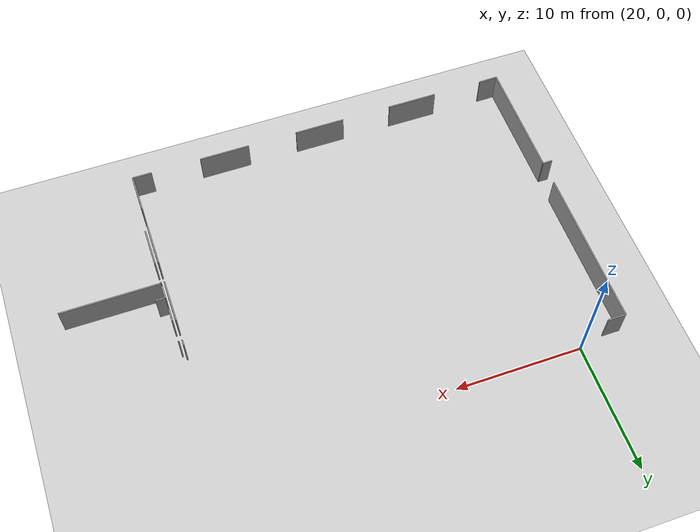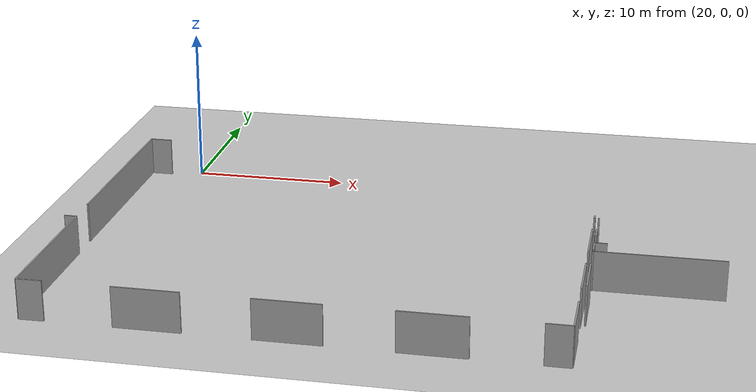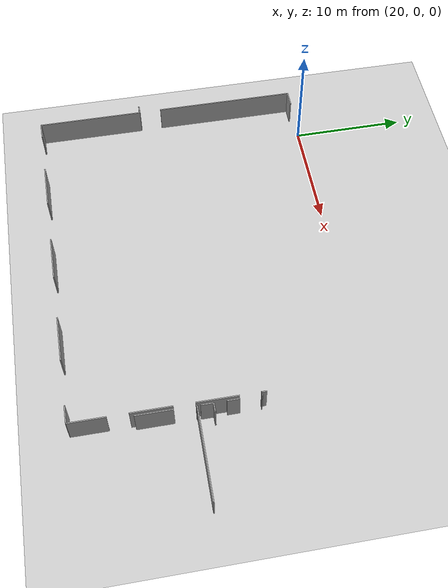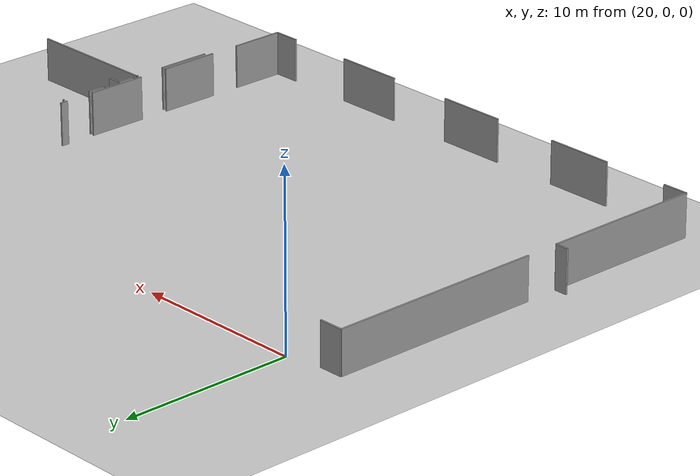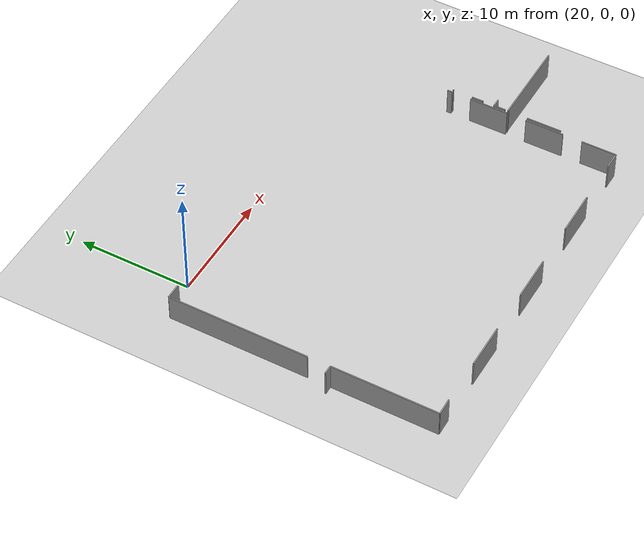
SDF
<sdf version="1.6">
 <world name="default">
  <model name="ground_plane">
   <static>1</static>
   <link name="link">
    <collision name="collision">
     <geometry><plane><normal>0 0 1</normal><size>100 100</size></plane></geometry>
     <surface><friction><ode><mu>100</mu><mu2>50</mu2></ode></friction></surface>
    </collision>
    <visual name="visual">
     <cast_shadows>0</cast_shadows>
     <geometry><plane><normal>0 0 1</normal><size>100 100</size></plane></geometry>
     <material>
      <script><uri>file://media/materials/scripts/gazebo.material</uri><name>Gazebo/Grey</name></script>
     </material>
    </visual>
   </link>
  </model>
  <model name="50057023">
   <static>1</static>
   <link name="Wall_372">
    <collision name="Wall_372_Collision">
     <geometry><box><size>9.45287756062 0.1 2.5</size></box></geometry>
     <pose>4.72643878031 0 1.25 0 0 0</pose>
    </collision>
    <visual name="Wall_372_Visual">
     <pose>4.72643878031 0 1.25 0 0 0</pose>
     <geometry><box><size>9.45287756062 0.1 2.5</size></box></geometry>
     <material>
      <script><uri>file://media/materials/scripts/gazebo.material</uri><name>Gazebo/Grey</name></script>
      <ambient>1 1 1 1</ambient>
     </material>
    </visual>
    <pose>72.5262636261 -47.5832647883 0 0 0 1.57079632679</pose>
   </link>
   <link name="Wall_373">
    <collision name="Wall_373_Collision">
     <geometry><box><size>0.778054774346 0.1 2.5</size></box></geometry>
     <pose>0.389027387173 0 1.25 0 0 0</pose>
    </collision>
    <visual name="Wall_373_Visual">
     <pose>0.389027387173 0 1.25 0 0 0</pose>
     <geometry><box><size>0.778054774346 0.1 2.5</size></box></geometry>
     <material>
      <script><uri>file://media/materials/scripts/gazebo.material</uri><name>Gazebo/Grey</name></script>
      <ambient>1 1 1 1</ambient>
     </material>
    </visual>
    <pose>72.5262636261 -38.1303872277 0 0 0 3.14159265359</pose>
   </link>
   <link name="Wall_377">
    <collision name="Wall_377_Collision">
     <geometry><box><size>12.5277084582 0.1 2.5</size></box></geometry>
     <pose>6.26385422911 0 1.25 0 0 0</pose>
    </collision>
    <visual name="Wall_377_Visual">
     <pose>6.26385422911 0 1.25 0 0 0</pose>
     <geometry><box><size>12.5277084582 0.1 2.5</size></box></geometry>
     <material>
      <script><uri>file://media/materials/scripts/gazebo.material</uri><name>Gazebo/Grey</name></script>
      <ambient>1 1 1 1</ambient>
     </material>
    </visual>
    <pose>72.4981274215 -36.138926946 0 0 0 1.57079632679</pose>
   </link>
   <link name="Wall_378">
    <collision name="Wall_378_Collision">
     <geometry><box><size>1.41783657935 0.1 2.5</size></box></geometry>
     <pose>0.708918289674 0 1.25 0 0 0</pose>
    </collision>
    <visual name="Wall_378_Visual">
     <pose>0.708918289674 0 1.25 0 0 0</pose>
     <geometry><box><size>1.41783657935 0.1 2.5</size></box></geometry>
     <material>
      <script><uri>file://media/materials/scripts/gazebo.material</uri><name>Gazebo/Grey</name></script>
      <ambient>1 1 1 1</ambient>
     </material>
    </visual>
    <pose>72.4981274215 -23.6112184878 0 0 0 0.0</pose>
   </link>
   <link name="Wall_411">
    <collision name="Wall_411_Collision">
     <geometry><box><size>0.438392484845 0.1 2.5</size></box></geometry>
     <pose>0.219196242423 0 1.25 0 0 0</pose>
    </collision>
    <visual name="Wall_411_Visual">
     <pose>0.219196242423 0 1.25 0 0 0</pose>
     <geometry><box><size>0.438392484845 0.1 2.5</size></box></geometry>
     <material>
      <script><uri>file://media/materials/scripts/gazebo.material</uri><name>Gazebo/Grey</name></script>
      <ambient>1 1 1 1</ambient>
     </material>
    </visual>
    <pose>103.77151881 -31.9039211983 0 0 0 -1.57079632679</pose>
   </link>
   <link name="Wall_412">
    <collision name="Wall_412_Collision">
     <geometry><box><size>3.45428944043 0.1 2.5</size></box></geometry>
     <pose>1.72714472022 0 1.25 0 0 0</pose>
    </collision>
    <visual name="Wall_412_Visual">
     <pose>1.72714472022 0 1.25 0 0 0</pose>
     <geometry><box><size>3.45428944043 0.1 2.5</size></box></geometry>
     <material>
      <script><uri>file://media/materials/scripts/gazebo.material</uri><name>Gazebo/Grey</name></script>
      <ambient>1 1 1 1</ambient>
     </material>
    </visual>
    <pose>103.77151881 -34.0747180993 0 0 0 -1.57079632679</pose>
   </link>
   <link name="Wall_413">
    <collision name="Wall_413_Collision">
     <geometry><box><size>3.44364330897 0.1 2.5</size></box></geometry>
     <pose>1.72182165448 0 1.25 0 0 0</pose>
    </collision>
    <visual name="Wall_413_Visual">
     <pose>1.72182165448 0 1.25 0 0 0</pose>
     <geometry><box><size>3.44364330897 0.1 2.5</size></box></geometry>
     <material>
      <script><uri>file://media/materials/scripts/gazebo.material</uri><name>Gazebo/Grey</name></script>
      <ambient>1 1 1 1</ambient>
     </material>
    </visual>
    <pose>103.77151881 -39.2773811531 0 0 0 -1.57079632679</pose>
   </link>
   <link name="Wall_414">
    <collision name="Wall_414_Collision">
     <geometry><box><size>3.09992535034 0.1 2.5</size></box></geometry>
     <pose>1.54996267517 0 1.25 0 0 0</pose>
    </collision>
    <visual name="Wall_414_Visual">
     <pose>1.54996267517 0 1.25 0 0 0</pose>
     <geometry><box><size>3.09992535034 0.1 2.5</size></box></geometry>
     <material>
      <script><uri>file://media/materials/scripts/gazebo.material</uri><name>Gazebo/Grey</name></script>
      <ambient>1 1 1 1</ambient>
     </material>
    </visual>
    <pose>103.77151881 -44.4579915059 0 0 0 -1.57079632679</pose>
   </link>
   <link name="Wall_415">
    <collision name="Wall_415_Collision">
     <geometry><box><size>1.53050813732 0.1 2.5</size></box></geometry>
     <pose>0.76525406866 0 1.25 0 0 0</pose>
    </collision>
    <visual name="Wall_415_Visual">
     <pose>0.76525406866 0 1.25 0 0 0</pose>
     <geometry><box><size>1.53050813732 0.1 2.5</size></box></geometry>
     <material>
      <script><uri>file://media/materials/scripts/gazebo.material</uri><name>Gazebo/Grey</name></script>
      <ambient>1 1 1 1</ambient>
     </material>
    </visual>
    <pose>103.77151881 -47.5579168562 0 0 0 3.14159265359</pose>
   </link>
   <link name="Wall_416">
    <collision name="Wall_416_Collision">
     <geometry><box><size>4.04337538133 0.1 2.5</size></box></geometry>
     <pose>2.02168769066 0 1.25 0 0 0</pose>
    </collision>
    <visual name="Wall_416_Visual">
     <pose>2.02168769066 0 1.25 0 0 0</pose>
     <geometry><box><size>4.04337538133 0.1 2.5</size></box></geometry>
     <material>
      <script><uri>file://media/materials/scripts/gazebo.material</uri><name>Gazebo/Grey</name></script>
      <ambient>1 1 1 1</ambient>
     </material>
    </visual>
    <pose>98.2409802552 -47.5579168562 0 0 0 3.14159265359</pose>
   </link>
   <link name="Wall_417">
    <collision name="Wall_417_Collision">
     <geometry><box><size>4.04350212099 0.1 2.5</size></box></geometry>
     <pose>2.02175106049 0 1.25 0 0 0</pose>
    </collision>
    <visual name="Wall_417_Visual">
     <pose>2.02175106049 0 1.25 0 0 0</pose>
     <geometry><box><size>4.04350212099 0.1 2.5</size></box></geometry>
     <material>
      <script><uri>file://media/materials/scripts/gazebo.material</uri><name>Gazebo/Grey</name></script>
      <ambient>1 1 1 1</ambient>
     </material>
    </visual>
    <pose>90.1831261351 -47.5579168562 0 0 0 3.14159265359</pose>
   </link>
   <link name="Wall_418">
    <collision name="Wall_418_Collision">
     <geometry><box><size>4.02892706006 0.1 2.5</size></box></geometry>
     <pose>2.01446353003 0 1.25 0 0 0</pose>
    </collision>
    <visual name="Wall_418_Visual">
     <pose>2.01446353003 0 1.25 0 0 0</pose>
     <geometry><box><size>4.02892706006 0.1 2.5</size></box></geometry>
     <material>
      <script><uri>file://media/materials/scripts/gazebo.material</uri><name>Gazebo/Grey</name></script>
      <ambient>1 1 1 1</ambient>
     </material>
    </visual>
    <pose>82.1105702144 -47.5579168562 0 0 0 3.14159265359</pose>
   </link>
   <link name="Wall_419">
    <collision name="Wall_419_Collision">
     <geometry><box><size>1.51931303267 0.1 2.5</size></box></geometry>
     <pose>0.759656516336 0 1.25 0 0 0</pose>
    </collision>
    <visual name="Wall_419_Visual">
     <pose>0.759656516336 0 1.25 0 0 0</pose>
     <geometry><box><size>1.51931303267 0.1 2.5</size></box></geometry>
     <material>
      <script><uri>file://media/materials/scripts/gazebo.material</uri><name>Gazebo/Grey</name></script>
      <ambient>1 1 1 1</ambient>
     </material>
    </visual>
    <pose>74.045365194 -47.5579168562 0 0 0 -3.12490806813</pose>
   </link>
   <link name="Wall_427">
    <collision name="Wall_427_Collision">
     <geometry><box><size>1.03977217279 0.1 2.5</size></box></geometry>
     <pose>0.519886086393 0 1.25 0 0 0</pose>
    </collision>
    <visual name="Wall_427_Visual">
     <pose>0.519886086393 0 1.25 0 0 0</pose>
     <geometry><box><size>1.03977217279 0.1 2.5</size></box></geometry>
     <material>
      <script><uri>file://media/materials/scripts/gazebo.material</uri><name>Gazebo/Grey</name></script>
      <ambient>1 1 1 1</ambient>
     </material>
    </visual>
    <pose>104.042234724 -37.1982170265 0 0 0 1.57079632679</pose>
   </link>
   <link name="Wall_428">
    <collision name="Wall_428_Collision">
     <geometry><box><size>0.756509032102 0.1 2.5</size></box></geometry>
     <pose>0.378254516051 0 1.25 0 0 0</pose>
    </collision>
    <visual name="Wall_428_Visual">
     <pose>0.378254516051 0 1.25 0 0 0</pose>
     <geometry><box><size>0.756509032102 0.1 2.5</size></box></geometry>
     <material>
      <script><uri>file://media/materials/scripts/gazebo.material</uri><name>Gazebo/Grey</name></script>
      <ambient>1 1 1 1</ambient>
     </material>
    </visual>
    <pose>104.042234724 -36.1584448537 0 0 0 0.0</pose>
   </link>
   <link name="Wall_431">
    <collision name="Wall_431_Collision">
     <geometry><box><size>1.03330845011 0.1 2.5</size></box></geometry>
     <pose>0.516654225057 0 1.25 0 0 0</pose>
    </collision>
    <visual name="Wall_431_Visual">
     <pose>0.516654225057 0 1.25 0 0 0</pose>
     <geometry><box><size>1.03330845011 0.1 2.5</size></box></geometry>
     <material>
      <script><uri>file://media/materials/scripts/gazebo.material</uri><name>Gazebo/Grey</name></script>
      <ambient>1 1 1 1</ambient>
     </material>
    </visual>
    <pose>104.042234724 -35.1250096639 0 0 0 1.57079632679</pose>
   </link>
   <link name="Wall_432">
    <collision name="Wall_432_Collision">
     <geometry><box><size>0.0756635771762 0.1 2.5</size></box></geometry>
     <pose>0.0378317885881 0 1.25 0 0 0</pose>
    </collision>
    <visual name="Wall_432_Visual">
     <pose>0.0378317885881 0 1.25 0 0 0</pose>
     <geometry><box><size>0.0756635771762 0.1 2.5</size></box></geometry>
     <material>
      <script><uri>file://media/materials/scripts/gazebo.material</uri><name>Gazebo/Grey</name></script>
      <ambient>1 1 1 1</ambient>
     </material>
    </visual>
    <pose>104.042234724 -32.3525795957 0 0 0 1.57079632679</pose>
   </link>
   <link name="Wall_436">
    <collision name="Wall_436_Collision">
     <geometry><box><size>3.08674442567 0.1 2.5</size></box></geometry>
     <pose>1.54337221284 0 1.25 0 0 0</pose>
    </collision>
    <visual name="Wall_436_Visual">
     <pose>1.54337221284 0 1.25 0 0 0</pose>
     <geometry><box><size>3.08674442567 0.1 2.5</size></box></geometry>
     <material>
      <script><uri>file://media/materials/scripts/gazebo.material</uri><name>Gazebo/Grey</name></script>
      <ambient>1 1 1 1</ambient>
     </material>
    </visual>
    <pose>104.040460369 -42.3705893014 0 0 0 1.57079632679</pose>
   </link>
   <link name="Wall_437">
    <collision name="Wall_437_Collision">
     <geometry><box><size>0.0953082245168 0.1 2.5</size></box></geometry>
     <pose>0.0476541122584 0 1.25 0 0 0</pose>
    </collision>
    <visual name="Wall_437_Visual">
     <pose>0.0476541122584 0 1.25 0 0 0</pose>
     <geometry><box><size>0.0953082245168 0.1 2.5</size></box></geometry>
     <material>
      <script><uri>file://media/materials/scripts/gazebo.material</uri><name>Gazebo/Grey</name></script>
      <ambient>1 1 1 1</ambient>
     </material>
    </visual>
    <pose>104.040460369 -37.5500463233 0 0 0 1.57079632679</pose>
   </link>
   <link name="Wall_438">
    <collision name="Wall_438_Collision">
     <geometry><box><size>7.78473015225 0.1 2.5</size></box></geometry>
     <pose>3.89236507613 0 1.25 0 0 0</pose>
    </collision>
    <visual name="Wall_438_Visual">
     <pose>3.89236507613 0 1.25 0 0 0</pose>
     <geometry><box><size>7.78473015225 0.1 2.5</size></box></geometry>
     <material>
      <script><uri>file://media/materials/scripts/gazebo.material</uri><name>Gazebo/Grey</name></script>
      <ambient>1 1 1 1</ambient>
     </material>
    </visual>
    <pose>104.040460369 -37.4547380988 0 0 0 0.0</pose>
   </link>
   <pose>-55.9 23.1541768322 0 0 0 0</pose>
  </model>
 </world>
</sdf>
